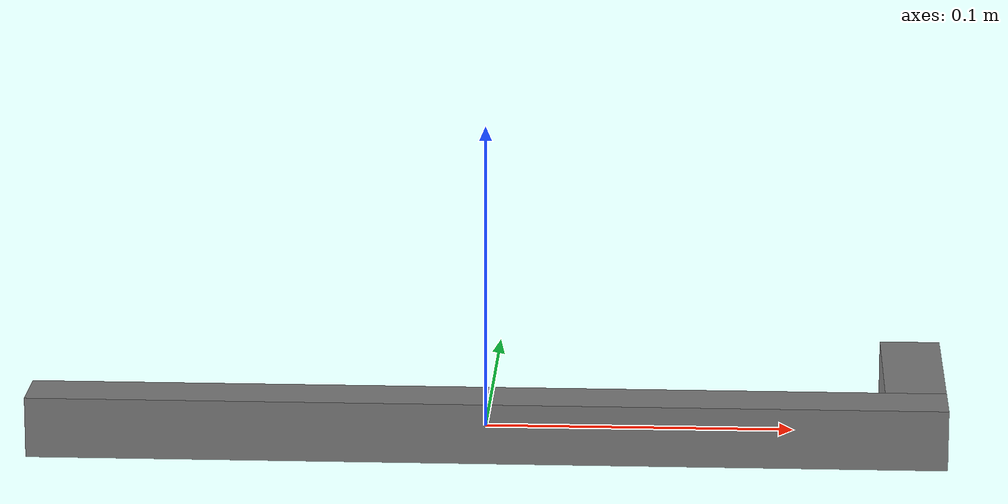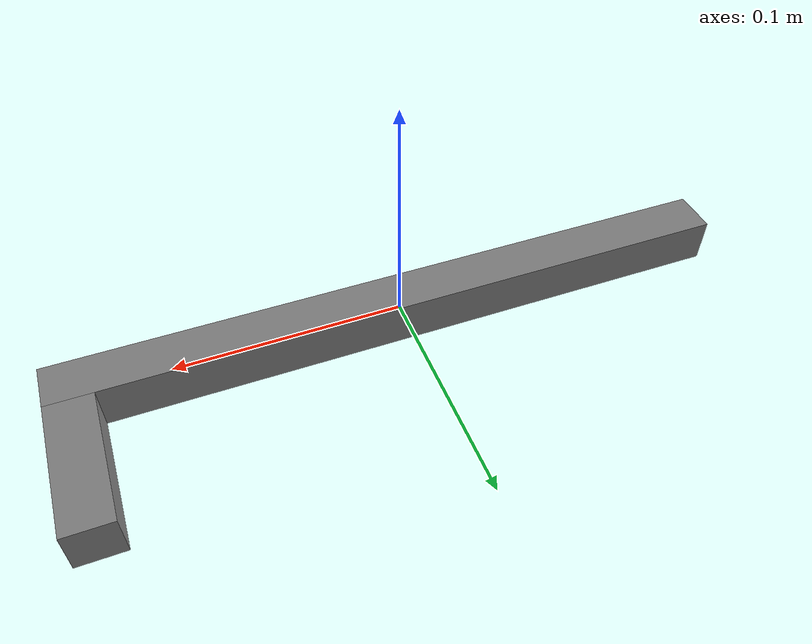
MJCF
<mujoco model="stick">
    <compiler angle="radian" autolimits="true" />
    <option impratio="10" />
    <default>
        <default class="visual">
            <geom contype="0" conaffinity="0" group="2" />
        </default>
        <default class="collision">
            <geom group="3" />
        </default>
    </default>

    <worldbody>
        <body name="stick">
            <freejoint />
            <!-- main stick -->
            <geom type="box" size="0.15 0.01 0.01" class="visual" />
            <geom type="box" size="0.15 0.01 0.01" class="collision" condim="4" friction="0.3 0.2" />
            <body name="hook" pos="0.14 0.04 0">
                <!-- head -->
                <geom type="box" size="0.01 0.03 0.01" class="visual" />
                <geom type="box" size="0.01 0.03 0.01" class="collision" condim="4"
                    friction="0.3 0.2" />
            </body>
        </body>
    </worldbody>
</mujoco>
